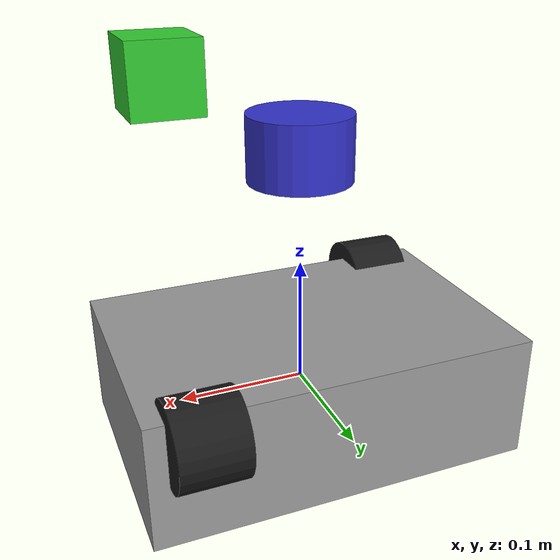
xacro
<?xml version="1.0"?>
<robot xmlns:xacro="http://ros.org/wiki/xacro" name="v2x_ball_bot">

  <!-- 파라미터 -->
  <xacro:property name="wheel_radius" value="0.0325"/>
  <xacro:property name="wheel_length" value="0.05"/>
  <xacro:property name="base_length" value="0.3"/>
  <xacro:property name="base_width" value="0.2"/>
  <xacro:property name="base_height" value="0.1"/>

  <!-- base_link -->
  <link name="base_link">
    <visual>
      <geometry>
        <box size="${base_length} ${base_width} ${base_height}"/>
      </geometry>
      <material name="gray">
        <color rgba="0.6 0.6 0.6 1.0"/>
      </material>
    </visual>
    <collision>
      <geometry>
        <box size="${base_length} ${base_width} ${base_height}"/>
      </geometry>
    </collision>
    <inertial>
      <mass value="5.0"/>
      <origin xyz="0 0 0"/>
      <inertia ixx="0.1" ixy="0.0" ixz="0.0" iyy="0.1" iyz="0.0" izz="0.1"/>
    </inertial>
  </link>

  <!-- Left Wheel -->
  <link name="left_wheel_link">
    <visual>
      <geometry>
        <cylinder length="${wheel_length}" radius="${wheel_radius}"/>
      </geometry>
      <material name="black">
        <color rgba="0.1 0.1 0.1 1.0"/>
      </material>
    </visual>
    <collision>
      <geometry>
        <cylinder length="${wheel_length}" radius="${wheel_radius}"/>
      </geometry>
    </collision>
    <inertial>
      <mass value="0.2"/>
      <origin xyz="0 0 0"/>
      <inertia ixx="0.001" ixy="0.0" ixz="0.0" iyy="0.001" iyz="0.0" izz="0.001"/>
    </inertial>
  </link>

  <joint name="left_wheel_joint" type="continuous">
    <parent link="base_link"/>
    <child link="left_wheel_link"/>
    <origin xyz="0.11 0.099 ${wheel_radius}" rpy="0 1.5708 0"/>
    <axis xyz="0 1 0"/>
  </joint>

  <!-- Right Wheel -->
  <link name="right_wheel_link">
    <visual>
      <geometry>
        <cylinder length="${wheel_length}" radius="${wheel_radius}"/>
      </geometry>
      <material name="black"/>
    </visual>
    <collision>
      <geometry>
        <cylinder length="${wheel_length}" radius="${wheel_radius}"/>
      </geometry>
    </collision>
    <inertial>
      <mass value="0.2"/>
      <origin xyz="0 0 0"/>
      <inertia ixx="0.001" ixy="0.0" ixz="0.0" iyy="0.001" iyz="0.0" izz="0.001"/>
    </inertial>
  </link>

  <joint name="right_wheel_joint" type="continuous">
    <parent link="base_link"/>
    <child link="right_wheel_link"/>
    <origin xyz="-0.11 -0.099 ${wheel_radius}" rpy="0 1.5708 0"/>
    <axis xyz="0 1 0"/>
  </joint>

  <!-- LiDAR -->
  <link name="lidar_link">
    <visual>
      <geometry>
        <cylinder length="0.05" radius="0.04"/>
      </geometry>
      <material name="blue">
        <color rgba="0.2 0.2 0.8 1.0"/>
      </material>
    </visual>
    <collision>
      <geometry>
        <cylinder length="0.05" radius="0.04"/>
      </geometry>
    </collision>
    <inertial>
      <mass value="0.1"/>
      <origin xyz="0 0 0"/>
      <inertia ixx="0.0005" ixy="0.0" ixz="0.0" iyy="0.0005" iyz="0.0" izz="0.0005"/>
    </inertial>
  </link>

  <joint name="lidar_joint" type="fixed">
    <parent link="base_link"/>
    <child link="lidar_link"/>
    <origin xyz="0 0 0.1915" rpy="0 0 0"/>
  </joint>

  <!-- Camera -->
  <link name="camera_link">
    <visual>
      <geometry>
        <box size="0.05 0.05 0.05"/>
      </geometry>
      <material name="green">
        <color rgba="0.2 0.8 0.2 1.0"/>
      </material>
    </visual>
    <collision>
      <geometry>
        <box size="0.05 0.05 0.05"/>
      </geometry>
    </collision>
    <inertial>
      <mass value="0.1"/>
      <origin xyz="0 0 0"/>
      <inertia ixx="0.0005" ixy="0.0" ixz="0.0" iyy="0.0005" iyz="0.0" izz="0.0005"/>
    </inertial>
  </link>

  <joint name="camera_joint" type="fixed">
    <parent link="base_link"/>
    <child link="camera_link"/>
    <origin xyz="0.1 0 0.25" rpy="0 0 0"/>
  </joint>

</robot>
